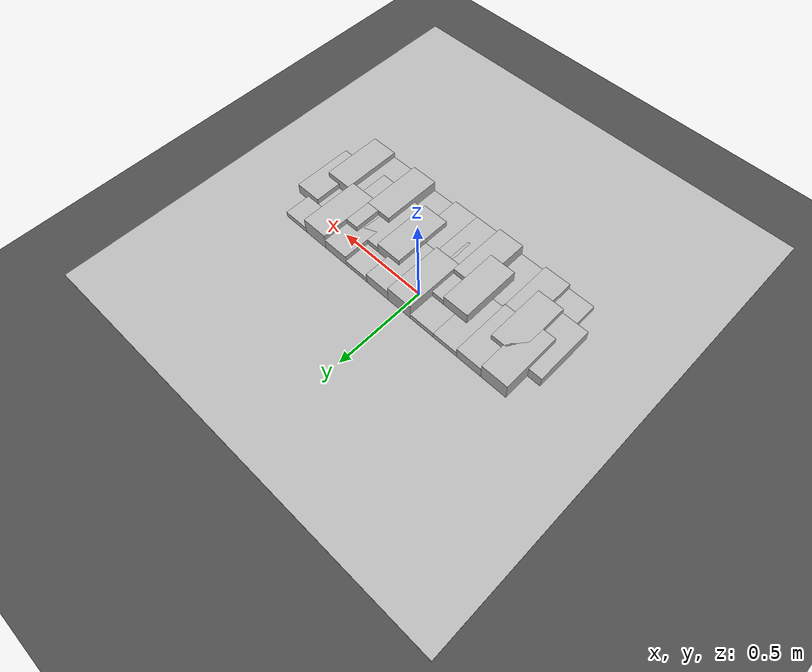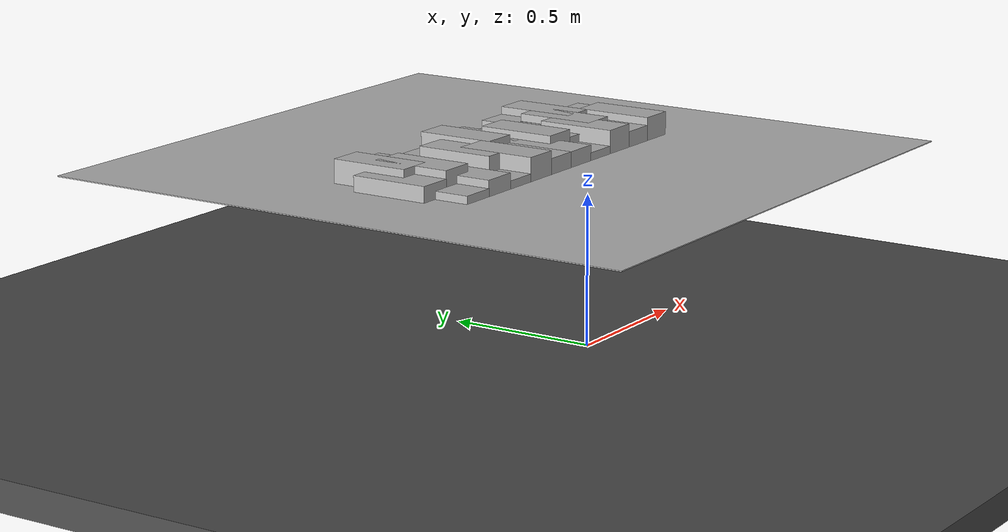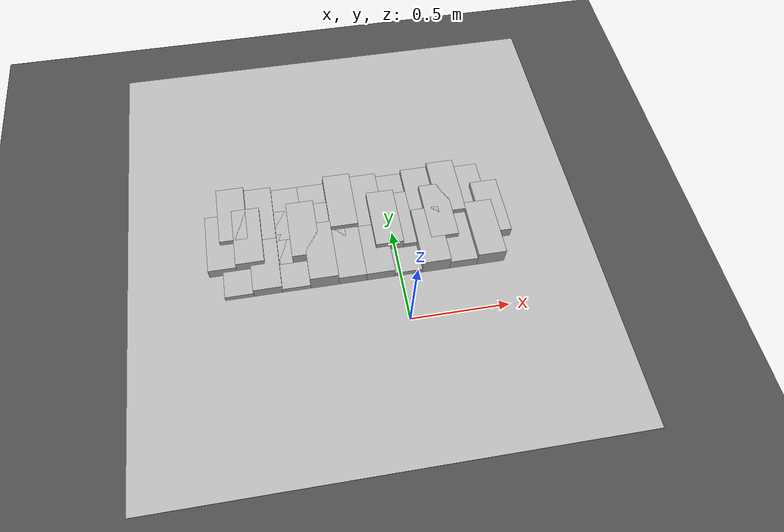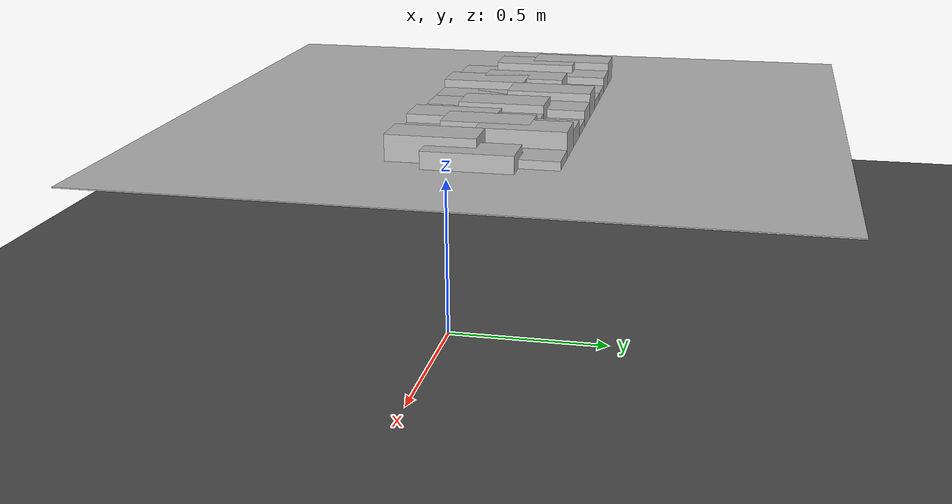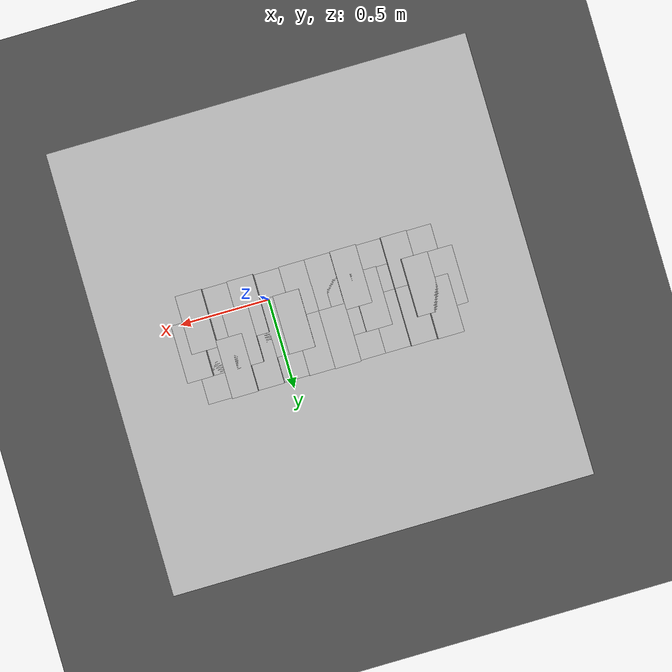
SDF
<sdf version="1.6">
 <world name="default">
  <model name="ground_plane">
   <static>1</static>
   <link name="link">
    <collision name="collision">
     <geometry><plane><normal>0 0 1</normal><size>100 100</size></plane></geometry>
     <surface><friction><ode><mu>100</mu><mu2>50</mu2></ode></friction></surface>
    </collision>
    <visual name="visual">
     <cast_shadows>0</cast_shadows>
     <geometry><plane><normal>0 0 1</normal><size>100 100</size></plane></geometry>
     <material>
      <script><uri>file://media/materials/scripts/gazebo.material</uri><name>Gazebo/Grey</name></script>
     </material>
    </visual>
   </link>
  </model>
  <model name="frc2016_roughterrain_0">
   <link name="link_clone">
    <pose>-0.141369 0.126623 -0.073164 0 -0 0</pose>
    <inertial>
     <inertia><ixx>nan</ixx><ixy>0</ixy><ixz>0</ixz><iyy>nan</iyy><iyz>0</iyz><izz>nan</izz></inertia>
     <mass>0</mass>
    </inertial>
    <visual name="row1_block3_md">
     <pose>0.28575 0.1143 0.10968 0 -0 0</pose>
     <geometry><box><size>0.115452 0.257474 0.0508</size></box></geometry>
     <material><shader type="pixel"/></material>
    </visual>
    <visual name="row1_block5_md">
     <pose>0.05715 0.1143 0.10968 0 -0 0</pose>
     <geometry><box><size>0.115452 0.257474 0.0508</size></box></geometry>
     <material><shader type="pixel"/></material>
    </visual>
    <visual name="row1_block8_sm">
     <pose>-0.28575 0.1143 0.09698 0 -0 0</pose>
     <geometry><box><size>0.115452 0.257474 0.0254</size></box></geometry>
     <material><shader type="pixel"/></material>
    </visual>
    <visual name="row1_block6_lg">
     <pose>-0.05715 0.1143 0.12238 0 -0 0</pose>
     <geometry><box><size>0.115452 0.257474 0.0762</size></box></geometry>
     <material><shader type="pixel"/></material>
    </visual>
    <visual name="row1_block7_sm">
     <pose>-0.17145 0.1143 0.09698 0 -0 0</pose>
     <geometry><box><size>0.115452 0.257474 0.0254</size></box></geometry>
     <material><shader type="pixel"/></material>
    </visual>
    <visual name="row1_block4_sm">
     <pose>0.17145 0.1143 0.09698 0 -0 0</pose>
     <geometry><box><size>0.115452 0.257474 0.0254</size></box></geometry>
     <material><shader type="pixel"/></material>
    </visual>
    <visual name="row1_block2_lg">
     <pose>0.40005 0.1143 0.12238 0 -0 0</pose>
     <geometry><box><size>0.115452 0.257474 0.0762</size></box></geometry>
     <material><shader type="pixel"/></material>
    </visual>
    <visual name="platform">
     <pose>0 0 0.08269 0 -0 0</pose>
     <geometry><box><size>1.91826 2.01688 0.003175</size></box></geometry>
     <material><shader type="pixel"/></material>
    </visual>
    <visual name="row1_block1_sm">
     <pose>0.51435 0.1143 0.09698 0 -0 0</pose>
     <geometry><box><size>0.115452 0.257474 0.0254</size></box></geometry>
     <material><shader type="pixel"/></material>
    </visual>
    <visual name="row1_block9_md">
     <pose>-0.40005 0.1143 0.10968 0 -0 0</pose>
     <geometry><box><size>0.115452 0.257474 0.0508</size></box></geometry>
     <material><shader type="pixel"/></material>
    </visual>
    <visual name="row2_block1_md">
     <pose>0.5715 0 0.10968 0 -0 0</pose>
     <geometry><box><size>0.115452 0.257474 0.0508</size></box></geometry>
     <material><shader type="pixel"/></material>
    </visual>
    <visual name="row1_block10_lg">
     <pose>-0.51435 0.1143 0.12238 0 -0 0</pose>
     <geometry><box><size>0.115452 0.257474 0.0762</size></box></geometry>
     <material><shader type="pixel"/></material>
    </visual>
    <visual name="row2_block2_sm">
     <pose>0.4572 0 0.09698 0 -0 0</pose>
     <geometry><box><size>0.115452 0.257474 0.0254</size></box></geometry>
     <material><shader type="pixel"/></material>
    </visual>
    <visual name="row2_block3_lg">
     <pose>0.3429 0 0.12238 0 -0 0</pose>
     <geometry><box><size>0.115452 0.257474 0.0762</size></box></geometry>
     <material><shader type="pixel"/></material>
    </visual>
    <visual name="row2_block4_md">
     <pose>0.2286 0 0.10968 0 -0 0</pose>
     <geometry><box><size>0.115452 0.257474 0.0508</size></box></geometry>
     <material><shader type="pixel"/></material>
    </visual>
    <visual name="row2_block5_lg">
     <pose>0.1143 0 0.12238 0 -0 0</pose>
     <geometry><box><size>0.115452 0.257474 0.0762</size></box></geometry>
     <material><shader type="pixel"/></material>
    </visual>
    <visual name="row2_block6_sm">
     <pose>0 0 0.09698 0 -0 0</pose>
     <geometry><box><size>0.115452 0.257474 0.0254</size></box></geometry>
     <material><shader type="pixel"/></material>
    </visual>
    <visual name="row2_block7_md">
     <pose>-0.1143 0 0.10968 0 -0 0</pose>
     <geometry><box><size>0.115452 0.257474 0.0508</size></box></geometry>
     <material><shader type="pixel"/></material>
    </visual>
    <visual name="row2_block8_lg">
     <pose>-0.2286 0 0.12238 0 -0 0</pose>
     <geometry><box><size>0.115452 0.257474 0.0762</size></box></geometry>
     <material><shader type="pixel"/></material>
    </visual>
    <visual name="row2_block9_sm">
     <pose>-0.3429 0 0.09698 0 -0 0</pose>
     <geometry><box><size>0.115452 0.257474 0.0254</size></box></geometry>
     <material><shader type="pixel"/></material>
    </visual>
    <visual name="row2_block10_lg">
     <pose>-0.4572 0 0.12238 0 -0 0</pose>
     <geometry><box><size>0.115452 0.257474 0.0762</size></box></geometry>
     <material><shader type="pixel"/></material>
    </visual>
    <visual name="row2_block11_md">
     <pose>-0.5715 0 0.10968 0 -0 0</pose>
     <geometry><box><size>0.115452 0.257474 0.0508</size></box></geometry>
     <material><shader type="pixel"/></material>
    </visual>
    <visual name="row3_block2_md">
     <pose>0.40005 -0.1143 0.10968 0 -0 0</pose>
     <geometry><box><size>0.115452 0.257474 0.0508</size></box></geometry>
     <material><shader type="pixel"/></material>
    </visual>
    <visual name="row3_block1_lg">
     <pose>0.51435 -0.1143 0.12238 0 -0 0</pose>
     <geometry><box><size>0.115452 0.257474 0.0762</size></box></geometry>
     <material><shader type="pixel"/></material>
    </visual>
    <visual name="row3_block3_lg">
     <pose>0.28575 -0.1143 0.12238 0 -0 0</pose>
     <geometry><box><size>0.115452 0.257474 0.0762</size></box></geometry>
     <material><shader type="pixel"/></material>
    </visual>
    <visual name="row3_block4_sm">
     <pose>0.17145 -0.1143 0.09698 0 -0 0</pose>
     <geometry><box><size>0.115452 0.257474 0.0254</size></box></geometry>
     <material><shader type="pixel"/></material>
    </visual>
    <visual name="row3_block5_md">
     <pose>0.05715 -0.1143 0.10968 0 -0 0</pose>
     <geometry><box><size>0.115452 0.257474 0.0508</size></box></geometry>
     <material><shader type="pixel"/></material>
    </visual>
    <visual name="row3_block6_md">
     <pose>-0.05715 -0.1143 0.10968 0 -0 0</pose>
     <geometry><box><size>0.115452 0.257474 0.0508</size></box></geometry>
     <material><shader type="pixel"/></material>
    </visual>
    <visual name="row3_block8_sm">
     <pose>-0.28575 -0.1143 0.09698 0 -0 0</pose>
     <geometry><box><size>0.115452 0.257474 0.0254</size></box></geometry>
     <material><shader type="pixel"/></material>
    </visual>
    <visual name="row3_block7_lg">
     <pose>-0.17145 -0.1143 0.12238 0 -0 0</pose>
     <geometry><box><size>0.115452 0.257474 0.0762</size></box></geometry>
     <material><shader type="pixel"/></material>
    </visual>
    <visual name="row3_block9_md">
     <pose>-0.40005 -0.1143 0.10968 0 -0 0</pose>
     <geometry><box><size>0.115452 0.257474 0.0508</size></box></geometry>
     <material><shader type="pixel"/></material>
    </visual>
    <visual name="row3_block10_sm">
     <pose>-0.51435 -0.1143 0.09698 0 -0 0</pose>
     <geometry><box><size>0.115452 0.257474 0.0254</size></box></geometry>
     <material><shader type="pixel"/></material>
    </visual>
    <collision name="row2_block5_lg_0">
     <pose>0.1143 0 0.12238 0 -0 0</pose>
     <geometry><box><size>0.115452 0.257474 0.0762</size></box></geometry>
     <surface>
      <friction>
       <ode><mu>1</mu><mu2>1</mu2><fdir1>0 0 0</fdir1><slip1>0</slip1><slip2>0</slip2></ode>
       <torsional>
        <coefficient>1</coefficient>
        <patch_radius>0</patch_radius>
        <surface_radius>0</surface_radius>
        <use_patch_radius>1</use_patch_radius>
        <ode><slip>0</slip></ode>
       </torsional>
      </friction>
      <bounce><restitution_coefficient>0</restitution_coefficient><threshold>1e+06</threshold></bounce>
      <contact>
       <collide_without_contact>0</collide_without_contact>
       <collide_without_contact_bitmask>1</collide_without_contact_bitmask>
       <collide_bitmask>1</collide_bitmask>
       <ode>
        <soft_cfm>0</soft_cfm>
        <soft_erp>0.2</soft_erp>
        <kp>1e+13</kp>
        <kd>1</kd>
        <max_vel>0.01</max_vel>
        <min_depth>0</min_depth>
       </ode>
       <bullet>
        <split_impulse>1</split_impulse>
        <split_impulse_penetration_threshold>-0.01</split_impulse_penetration_threshold>
        <soft_cfm>0</soft_cfm>
        <soft_erp>0.2</soft_erp>
        <kp>1e+13</kp>
        <kd>1</kd>
       </bullet>
      </contact>
     </surface>
    </collision>
    <collision name="platform_0">
     <pose>0 0 0.08269 0 -0 0</pose>
     <geometry><box><size>1.91826 2.01688 0.003175</size></box></geometry>
     <surface>
      <friction>
       <ode><mu>1</mu><mu2>1</mu2><fdir1>0 0 0</fdir1><slip1>0</slip1><slip2>0</slip2></ode>
       <torsional>
        <coefficient>1</coefficient>
        <patch_radius>0</patch_radius>
        <surface_radius>0</surface_radius>
        <use_patch_radius>1</use_patch_radius>
        <ode><slip>0</slip></ode>
       </torsional>
      </friction>
      <bounce><restitution_coefficient>0</restitution_coefficient><threshold>1e+06</threshold></bounce>
      <contact>
       <collide_without_contact>0</collide_without_contact>
       <collide_without_contact_bitmask>1</collide_without_contact_bitmask>
       <collide_bitmask>1</collide_bitmask>
       <ode>
        <soft_cfm>0</soft_cfm>
        <soft_erp>0.2</soft_erp>
        <kp>1e+13</kp>
        <kd>1</kd>
        <max_vel>0.01</max_vel>
        <min_depth>0</min_depth>
       </ode>
       <bullet>
        <split_impulse>1</split_impulse>
        <split_impulse_penetration_threshold>-0.01</split_impulse_penetration_threshold>
        <soft_cfm>0</soft_cfm>
        <soft_erp>0.2</soft_erp>
        <kp>1e+13</kp>
        <kd>1</kd>
       </bullet>
      </contact>
     </surface>
    </collision>
    <collision name="row1_block1_sm_0">
     <pose>0.51435 0.1143 0.09698 0 -0 0</pose>
     <geometry><box><size>0.115452 0.257474 0.0254</size></box></geometry>
     <surface>
      <friction>
       <ode><mu>1</mu><mu2>1</mu2><fdir1>0 0 0</fdir1><slip1>0</slip1><slip2>0</slip2></ode>
       <torsional>
        <coefficient>1</coefficient>
        <patch_radius>0</patch_radius>
        <surface_radius>0</surface_radius>
        <use_patch_radius>1</use_patch_radius>
        <ode><slip>0</slip></ode>
       </torsional>
      </friction>
      <bounce><restitution_coefficient>0</restitution_coefficient><threshold>1e+06</threshold></bounce>
      <contact>
       <collide_without_contact>0</collide_without_contact>
       <collide_without_contact_bitmask>1</collide_without_contact_bitmask>
       <collide_bitmask>1</collide_bitmask>
       <ode>
        <soft_cfm>0</soft_cfm>
        <soft_erp>0.2</soft_erp>
        <kp>1e+13</kp>
        <kd>1</kd>
        <max_vel>0.01</max_vel>
        <min_depth>0</min_depth>
       </ode>
       <bullet>
        <split_impulse>1</split_impulse>
        <split_impulse_penetration_threshold>-0.01</split_impulse_penetration_threshold>
        <soft_cfm>0</soft_cfm>
        <soft_erp>0.2</soft_erp>
        <kp>1e+13</kp>
        <kd>1</kd>
       </bullet>
      </contact>
     </surface>
    </collision>
    <collision name="row1_block3_md_0">
     <pose>0.28575 0.1143 0.10968 0 -0 0</pose>
     <geometry><box><size>0.115452 0.257474 0.0508</size></box></geometry>
     <surface>
      <friction>
       <ode><mu>1</mu><mu2>1</mu2><fdir1>0 0 0</fdir1><slip1>0</slip1><slip2>0</slip2></ode>
       <torsional>
        <coefficient>1</coefficient>
        <patch_radius>0</patch_radius>
        <surface_radius>0</surface_radius>
        <use_patch_radius>1</use_patch_radius>
        <ode><slip>0</slip></ode>
       </torsional>
      </friction>
      <bounce><restitution_coefficient>0</restitution_coefficient><threshold>1e+06</threshold></bounce>
      <contact>
       <collide_without_contact>0</collide_without_contact>
       <collide_without_contact_bitmask>1</collide_without_contact_bitmask>
       <collide_bitmask>1</collide_bitmask>
       <ode>
        <soft_cfm>0</soft_cfm>
        <soft_erp>0.2</soft_erp>
        <kp>1e+13</kp>
        <kd>1</kd>
        <max_vel>0.01</max_vel>
        <min_depth>0</min_depth>
       </ode>
       <bullet>
        <split_impulse>1</split_impulse>
        <split_impulse_penetration_threshold>-0.01</split_impulse_penetration_threshold>
        <soft_cfm>0</soft_cfm>
        <soft_erp>0.2</soft_erp>
        <kp>1e+13</kp>
        <kd>1</kd>
       </bullet>
      </contact>
     </surface>
    </collision>
    <collision name="row1_block2_lg_0">
     <pose>0.40005 0.1143 0.12238 0 -0 0</pose>
     <geometry><box><size>0.115452 0.257474 0.0762</size></box></geometry>
     <surface>
      <friction>
       <ode><mu>1</mu><mu2>1</mu2><fdir1>0 0 0</fdir1><slip1>0</slip1><slip2>0</slip2></ode>
       <torsional>
        <coefficient>1</coefficient>
        <patch_radius>0</patch_radius>
        <surface_radius>0</surface_radius>
        <use_patch_radius>1</use_patch_radius>
        <ode><slip>0</slip></ode>
       </torsional>
      </friction>
      <bounce><restitution_coefficient>0</restitution_coefficient><threshold>1e+06</threshold></bounce>
      <contact>
       <collide_without_contact>0</collide_without_contact>
       <collide_without_contact_bitmask>1</collide_without_contact_bitmask>
       <collide_bitmask>1</collide_bitmask>
       <ode>
        <soft_cfm>0</soft_cfm>
        <soft_erp>0.2</soft_erp>
        <kp>1e+13</kp>
        <kd>1</kd>
        <max_vel>0.01</max_vel>
        <min_depth>0</min_depth>
       </ode>
       <bullet>
        <split_impulse>1</split_impulse>
        <split_impulse_penetration_threshold>-0.01</split_impulse_penetration_threshold>
        <soft_cfm>0</soft_cfm>
        <soft_erp>0.2</soft_erp>
        <kp>1e+13</kp>
        <kd>1</kd>
       </bullet>
      </contact>
     </surface>
    </collision>
    <collision name="row1_block6_lg_0">
     <pose>-0.05715 0.1143 0.12238 0 -0 0</pose>
     <geometry><box><size>0.115452 0.257474 0.0762</size></box></geometry>
     <surface>
      <friction>
       <ode><mu>1</mu><mu2>1</mu2><fdir1>0 0 0</fdir1><slip1>0</slip1><slip2>0</slip2></ode>
       <torsional>
        <coefficient>1</coefficient>
        <patch_radius>0</patch_radius>
        <surface_radius>0</surface_radius>
        <use_patch_radius>1</use_patch_radius>
        <ode><slip>0</slip></ode>
       </torsional>
      </friction>
      <bounce><restitution_coefficient>0</restitution_coefficient><threshold>1e+06</threshold></bounce>
      <contact>
       <collide_without_contact>0</collide_without_contact>
       <collide_without_contact_bitmask>1</collide_without_contact_bitmask>
       <collide_bitmask>1</collide_bitmask>
       <ode>
        <soft_cfm>0</soft_cfm>
        <soft_erp>0.2</soft_erp>
        <kp>1e+13</kp>
        <kd>1</kd>
        <max_vel>0.01</max_vel>
        <min_depth>0</min_depth>
       </ode>
       <bullet>
        <split_impulse>1</split_impulse>
        <split_impulse_penetration_threshold>-0.01</split_impulse_penetration_threshold>
        <soft_cfm>0</soft_cfm>
        <soft_erp>0.2</soft_erp>
        <kp>1e+13</kp>
        <kd>1</kd>
       </bullet>
      </contact>
     </surface>
    </collision>
    <collision name="row1_block5_md_0">
     <pose>0.05715 0.1143 0.10968 0 -0 0</pose>
     <geometry><box><size>0.115452 0.257474 0.0508</size></box></geometry>
     <surface>
      <friction>
       <ode><mu>1</mu><mu2>1</mu2><fdir1>0 0 0</fdir1><slip1>0</slip1><slip2>0</slip2></ode>
       <torsional>
        <coefficient>1</coefficient>
        <patch_radius>0</patch_radius>
        <surface_radius>0</surface_radius>
        <use_patch_radius>1</use_patch_radius>
        <ode><slip>0</slip></ode>
       </torsional>
      </friction>
      <bounce><restitution_coefficient>0</restitution_coefficient><threshold>1e+06</threshold></bounce>
      <contact>
       <collide_without_contact>0</collide_without_contact>
       <collide_without_contact_bitmask>1</collide_without_contact_bitmask>
       <collide_bitmask>1</collide_bitmask>
       <ode>
        <soft_cfm>0</soft_cfm>
        <soft_erp>0.2</soft_erp>
        <kp>1e+13</kp>
        <kd>1</kd>
        <max_vel>0.01</max_vel>
        <min_depth>0</min_depth>
       </ode>
       <bullet>
        <split_impulse>1</split_impulse>
        <split_impulse_penetration_threshold>-0.01</split_impulse_penetration_threshold>
        <soft_cfm>0</soft_cfm>
        <soft_erp>0.2</soft_erp>
        <kp>1e+13</kp>
        <kd>1</kd>
       </bullet>
      </contact>
     </surface>
    </collision>
    <collision name="row1_block4_sm_0">
     <pose>0.17145 0.1143 0.09698 0 -0 0</pose>
     <geometry><box><size>0.115452 0.257474 0.0254</size></box></geometry>
     <surface>
      <friction>
       <ode><mu>1</mu><mu2>1</mu2><fdir1>0 0 0</fdir1><slip1>0</slip1><slip2>0</slip2></ode>
       <torsional>
        <coefficient>1</coefficient>
        <patch_radius>0</patch_radius>
        <surface_radius>0</surface_radius>
        <use_patch_radius>1</use_patch_radius>
        <ode><slip>0</slip></ode>
       </torsional>
      </friction>
      <bounce><restitution_coefficient>0</restitution_coefficient><threshold>1e+06</threshold></bounce>
      <contact>
       <collide_without_contact>0</collide_without_contact>
       <collide_without_contact_bitmask>1</collide_without_contact_bitmask>
       <collide_bitmask>1</collide_bitmask>
       <ode>
        <soft_cfm>0</soft_cfm>
        <soft_erp>0.2</soft_erp>
        <kp>1e+13</kp>
        <kd>1</kd>
        <max_vel>0.01</max_vel>
        <min_depth>0</min_depth>
       </ode>
       <bullet>
        <split_impulse>1</split_impulse>
        <split_impulse_penetration_threshold>-0.01</split_impulse_penetration_threshold>
        <soft_cfm>0</soft_cfm>
        <soft_erp>0.2</soft_erp>
        <kp>1e+13</kp>
        <kd>1</kd>
       </bullet>
      </contact>
     </surface>
    </collision>
    <collision name="row1_block7_sm_0">
     <pose>-0.17145 0.1143 0.09698 0 -0 0</pose>
     <geometry><box><size>0.115452 0.257474 0.0254</size></box></geometry>
     <surface>
      <friction>
       <ode><mu>1</mu><mu2>1</mu2><fdir1>0 0 0</fdir1><slip1>0</slip1><slip2>0</slip2></ode>
       <torsional>
        <coefficient>1</coefficient>
        <patch_radius>0</patch_radius>
        <surface_radius>0</surface_radius>
        <use_patch_radius>1</use_patch_radius>
        <ode><slip>0</slip></ode>
       </torsional>
      </friction>
      <bounce><restitution_coefficient>0</restitution_coefficient><threshold>1e+06</threshold></bounce>
      <contact>
       <collide_without_contact>0</collide_without_contact>
       <collide_without_contact_bitmask>1</collide_without_contact_bitmask>
       <collide_bitmask>1</collide_bitmask>
       <ode>
        <soft_cfm>0</soft_cfm>
        <soft_erp>0.2</soft_erp>
        <kp>1e+13</kp>
        <kd>1</kd>
        <max_vel>0.01</max_vel>
        <min_depth>0</min_depth>
       </ode>
       <bullet>
        <split_impulse>1</split_impulse>
        <split_impulse_penetration_threshold>-0.01</split_impulse_penetration_threshold>
        <soft_cfm>0</soft_cfm>
        <soft_erp>0.2</soft_erp>
        <kp>1e+13</kp>
        <kd>1</kd>
       </bullet>
      </contact>
     </surface>
    </collision>
    <collision name="row1_block8_sm_0">
     <pose>-0.28575 0.1143 0.09698 0 -0 0</pose>
     <geometry><box><size>0.115452 0.257474 0.0254</size></box></geometry>
     <surface>
      <friction>
       <ode><mu>1</mu><mu2>1</mu2><fdir1>0 0 0</fdir1><slip1>0</slip1><slip2>0</slip2></ode>
       <torsional>
        <coefficient>1</coefficient>
        <patch_radius>0</patch_radius>
        <surface_radius>0</surface_radius>
        <use_patch_radius>1</use_patch_radius>
        <ode><slip>0</slip></ode>
       </torsional>
      </friction>
      <bounce><restitution_coefficient>0</restitution_coefficient><threshold>1e+06</threshold></bounce>
      <contact>
       <collide_without_contact>0</collide_without_contact>
       <collide_without_contact_bitmask>1</collide_without_contact_bitmask>
       <collide_bitmask>1</collide_bitmask>
       <ode>
        <soft_cfm>0</soft_cfm>
        <soft_erp>0.2</soft_erp>
        <kp>1e+13</kp>
        <kd>1</kd>
        <max_vel>0.01</max_vel>
        <min_depth>0</min_depth>
       </ode>
       <bullet>
        <split_impulse>1</split_impulse>
        <split_impulse_penetration_threshold>-0.01</split_impulse_penetration_threshold>
        <soft_cfm>0</soft_cfm>
        <soft_erp>0.2</soft_erp>
        <kp>1e+13</kp>
        <kd>1</kd>
       </bullet>
      </contact>
     </surface>
    </collision>
    <collision name="row1_block10_lg_0">
     <pose>-0.51435 0.1143 0.12238 0 -0 0</pose>
     <geometry><box><size>0.115452 0.257474 0.0762</size></box></geometry>
     <surface>
      <friction>
       <ode><mu>1</mu><mu2>1</mu2><fdir1>0 0 0</fdir1><slip1>0</slip1><slip2>0</slip2></ode>
       <torsional>
        <coefficient>1</coefficient>
        <patch_radius>0</patch_radius>
        <surface_radius>0</surface_radius>
        <use_patch_radius>1</use_patch_radius>
        <ode><slip>0</slip></ode>
       </torsional>
      </friction>
      <bounce><restitution_coefficient>0</restitution_coefficient><threshold>1e+06</threshold></bounce>
      <contact>
       <collide_without_contact>0</collide_without_contact>
       <collide_without_contact_bitmask>1</collide_without_contact_bitmask>
       <collide_bitmask>1</collide_bitmask>
       <ode>
        <soft_cfm>0</soft_cfm>
        <soft_erp>0.2</soft_erp>
        <kp>1e+13</kp>
        <kd>1</kd>
        <max_vel>0.01</max_vel>
        <min_depth>0</min_depth>
       </ode>
       <bullet>
        <split_impulse>1</split_impulse>
        <split_impulse_penetration_threshold>-0.01</split_impulse_penetration_threshold>
        <soft_cfm>0</soft_cfm>
        <soft_erp>0.2</soft_erp>
        <kp>1e+13</kp>
        <kd>1</kd>
       </bullet>
      </contact>
     </surface>
    </collision>
    <collision name="row1_block9_md_0">
     <pose>-0.40005 0.1143 0.10968 0 -0 0</pose>
     <geometry><box><size>0.115452 0.257474 0.0508</size></box></geometry>
     <surface>
      <friction>
       <ode><mu>1</mu><mu2>1</mu2><fdir1>0 0 0</fdir1><slip1>0</slip1><slip2>0</slip2></ode>
       <torsional>
        <coefficient>1</coefficient>
        <patch_radius>0</patch_radius>
        <surface_radius>0</surface_radius>
        <use_patch_radius>1</use_patch_radius>
        <ode><slip>0</slip></ode>
       </torsional>
      </friction>
      <bounce><restitution_coefficient>0</restitution_coefficient><threshold>1e+06</threshold></bounce>
      <contact>
       <collide_without_contact>0</collide_without_contact>
       <collide_without_contact_bitmask>1</collide_without_contact_bitmask>
       <collide_bitmask>1</collide_bitmask>
       <ode>
        <soft_cfm>0</soft_cfm>
        <soft_erp>0.2</soft_erp>
        <kp>1e+13</kp>
        <kd>1</kd>
        <max_vel>0.01</max_vel>
        <min_depth>0</min_depth>
       </ode>
       <bullet>
        <split_impulse>1</split_impulse>
        <split_impulse_penetration_threshold>-0.01</split_impulse_penetration_threshold>
        <soft_cfm>0</soft_cfm>
        <soft_erp>0.2</soft_erp>
        <kp>1e+13</kp>
        <kd>1</kd>
       </bullet>
      </contact>
     </surface>
    </collision>
    <collision name="row2_block1_md_0">
     <pose>0.5715 0 0.10968 0 -0 0</pose>
     <geometry><box><size>0.115452 0.257474 0.0508</size></box></geometry>
     <surface>
      <friction>
       <ode><mu>1</mu><mu2>1</mu2><fdir1>0 0 0</fdir1><slip1>0</slip1><slip2>0</slip2></ode>
       <torsional>
        <coefficient>1</coefficient>
        <patch_radius>0</patch_radius>
        <surface_radius>0</surface_radius>
        <use_patch_radius>1</use_patch_radius>
        <ode><slip>0</slip></ode>
       </torsional>
      </friction>
      <bounce><restitution_coefficient>0</restitution_coefficient><threshold>1e+06</threshold></bounce>
      <contact>
       <collide_without_contact>0</collide_without_contact>
       <collide_without_contact_bitmask>1</collide_without_contact_bitmask>
       <collide_bitmask>1</collide_bitmask>
       <ode>
        <soft_cfm>0</soft_cfm>
        <soft_erp>0.2</soft_erp>
        <kp>1e+13</kp>
        <kd>1</kd>
        <max_vel>0.01</max_vel>
        <min_depth>0</min_depth>
       </ode>
       <bullet>
        <split_impulse>1</split_impulse>
        <split_impulse_penetration_threshold>-0.01</split_impulse_penetration_threshold>
        <soft_cfm>0</soft_cfm>
        <soft_erp>0.2</soft_erp>
        <kp>1e+13</kp>
        <kd>1</kd>
       </bullet>
      </contact>
     </surface>
    </collision>
    <collision name="row2_block4_md_0">
     <pose>0.2286 0 0.10968 0 -0 0</pose>
     <geometry><box><size>0.115452 0.257474 0.0508</size></box></geometry>
     <surface>
      <friction>
       <ode><mu>1</mu><mu2>1</mu2><fdir1>0 0 0</fdir1><slip1>0</slip1><slip2>0</slip2></ode>
       <torsional>
        <coefficient>1</coefficient>
        <patch_radius>0</patch_radius>
        <surface_radius>0</surface_radius>
        <use_patch_radius>1</use_patch_radius>
        <ode><slip>0</slip></ode>
       </torsional>
      </friction>
      <bounce><restitution_coefficient>0</restitution_coefficient><threshold>1e+06</threshold></bounce>
      <contact>
       <collide_without_contact>0</collide_without_contact>
       <collide_without_contact_bitmask>1</collide_without_contact_bitmask>
       <collide_bitmask>1</collide_bitmask>
       <ode>
        <soft_cfm>0</soft_cfm>
        <soft_erp>0.2</soft_erp>
        <kp>1e+13</kp>
        <kd>1</kd>
        <max_vel>0.01</max_vel>
        <min_depth>0</min_depth>
       </ode>
       <bullet>
        <split_impulse>1</split_impulse>
        <split_impulse_penetration_threshold>-0.01</split_impulse_penetration_threshold>
        <soft_cfm>0</soft_cfm>
        <soft_erp>0.2</soft_erp>
        <kp>1e+13</kp>
        <kd>1</kd>
       </bullet>
      </contact>
     </surface>
    </collision>
    <collision name="row2_block2_sm_0">
     <pose>0.4572 0 0.09698 0 -0 0</pose>
     <geometry><box><size>0.115452 0.257474 0.0254</size></box></geometry>
     <surface>
      <friction>
       <ode><mu>1</mu><mu2>1</mu2><fdir1>0 0 0</fdir1><slip1>0</slip1><slip2>0</slip2></ode>
       <torsional>
        <coefficient>1</coefficient>
        <patch_radius>0</patch_radius>
        <surface_radius>0</surface_radius>
        <use_patch_radius>1</use_patch_radius>
        <ode><slip>0</slip></ode>
       </torsional>
      </friction>
      <bounce><restitution_coefficient>0</restitution_coefficient><threshold>1e+06</threshold></bounce>
      <contact>
       <collide_without_contact>0</collide_without_contact>
       <collide_without_contact_bitmask>1</collide_without_contact_bitmask>
       <collide_bitmask>1</collide_bitmask>
       <ode>
        <soft_cfm>0</soft_cfm>
        <soft_erp>0.2</soft_erp>
        <kp>1e+13</kp>
        <kd>1</kd>
        <max_vel>0.01</max_vel>
        <min_depth>0</min_depth>
       </ode>
       <bullet>
        <split_impulse>1</split_impulse>
        <split_impulse_penetration_threshold>-0.01</split_impulse_penetration_threshold>
        <soft_cfm>0</soft_cfm>
        <soft_erp>0.2</soft_erp>
        <kp>1e+13</kp>
        <kd>1</kd>
       </bullet>
      </contact>
     </surface>
    </collision>
    <collision name="row2_block3_lg_0">
     <pose>0.3429 0 0.12238 0 -0 0</pose>
     <geometry><box><size>0.115452 0.257474 0.0762</size></box></geometry>
     <surface>
      <friction>
       <ode><mu>1</mu><mu2>1</mu2><fdir1>0 0 0</fdir1><slip1>0</slip1><slip2>0</slip2></ode>
       <torsional>
        <coefficient>1</coefficient>
        <patch_radius>0</patch_radius>
        <surface_radius>0</surface_radius>
        <use_patch_radius>1</use_patch_radius>
        <ode><slip>0</slip></ode>
       </torsional>
      </friction>
      <bounce><restitution_coefficient>0</restitution_coefficient><threshold>1e+06</threshold></bounce>
      <contact>
       <collide_without_contact>0</collide_without_contact>
       <collide_without_contact_bitmask>1</collide_without_contact_bitmask>
       <collide_bitmask>1</collide_bitmask>
       <ode>
        <soft_cfm>0</soft_cfm>
        <soft_erp>0.2</soft_erp>
        <kp>1e+13</kp>
        <kd>1</kd>
        <max_vel>0.01</max_vel>
        <min_depth>0</min_depth>
       </ode>
       <bullet>
        <split_impulse>1</split_impulse>
        <split_impulse_penetration_threshold>-0.01</split_impulse_penetration_threshold>
        <soft_cfm>0</soft_cfm>
        <soft_erp>0.2</soft_erp>
        <kp>1e+13</kp>
        <kd>1</kd>
       </bullet>
      </contact>
     </surface>
    </collision>
    <collision name="row2_block6_sm_0">
     <pose>0 0 0.09698 0 -0 0</pose>
     <geometry><box><size>0.115452 0.257474 0.0254</size></box></geometry>
     <surface>
      <friction>
       <ode><mu>1</mu><mu2>1</mu2><fdir1>0 0 0</fdir1><slip1>0</slip1><slip2>0</slip2></ode>
       <torsional>
        <coefficient>1</coefficient>
        <patch_radius>0</patch_radius>
        <surface_radius>0</surface_radius>
        <use_patch_radius>1</use_patch_radius>
        <ode><slip>0</slip></ode>
       </torsional>
      </friction>
      <bounce><restitution_coefficient>0</restitution_coefficient><threshold>1e+06</threshold></bounce>
      <contact>
       <collide_without_contact>0</collide_without_contact>
       <collide_without_contact_bitmask>1</collide_without_contact_bitmask>
       <collide_bitmask>1</collide_bitmask>
       <ode>
        <soft_cfm>0</soft_cfm>
        <soft_erp>0.2</soft_erp>
        <kp>1e+13</kp>
        <kd>1</kd>
        <max_vel>0.01</max_vel>
        <min_depth>0</min_depth>
       </ode>
       <bullet>
        <split_impulse>1</split_impulse>
        <split_impulse_penetration_threshold>-0.01</split_impulse_penetration_threshold>
        <soft_cfm>0</soft_cfm>
        <soft_erp>0.2</soft_erp>
        <kp>1e+13</kp>
        <kd>1</kd>
       </bullet>
      </contact>
     </surface>
    </collision>
    <collision name="row2_block8_lg_0">
     <pose>-0.2286 0 0.12238 0 -0 0</pose>
     <geometry><box><size>0.115452 0.257474 0.0762</size></box></geometry>
     <surface>
      <friction>
       <ode><mu>1</mu><mu2>1</mu2><fdir1>0 0 0</fdir1><slip1>0</slip1><slip2>0</slip2></ode>
       <torsional>
        <coefficient>1</coefficient>
        <patch_radius>0</patch_radius>
        <surface_radius>0</surface_radius>
        <use_patch_radius>1</use_patch_radius>
        <ode><slip>0</slip></ode>
       </torsional>
      </friction>
      <bounce><restitution_coefficient>0</restitution_coefficient><threshold>1e+06</threshold></bounce>
      <contact>
       <collide_without_contact>0</collide_without_contact>
       <collide_without_contact_bitmask>1</collide_without_contact_bitmask>
       <collide_bitmask>1</collide_bitmask>
       <ode>
        <soft_cfm>0</soft_cfm>
        <soft_erp>0.2</soft_erp>
        <kp>1e+13</kp>
        <kd>1</kd>
        <max_vel>0.01</max_vel>
        <min_depth>0</min_depth>
       </ode>
       <bullet>
        <split_impulse>1</split_impulse>
        <split_impulse_penetration_threshold>-0.01</split_impulse_penetration_threshold>
        <soft_cfm>0</soft_cfm>
        <soft_erp>0.2</soft_erp>
        <kp>1e+13</kp>
        <kd>1</kd>
       </bullet>
      </contact>
     </surface>
    </collision>
    <collision name="row2_block7_md_0">
     <pose>-0.1143 0 0.10968 0 -0 0</pose>
     <geometry><box><size>0.115452 0.257474 0.0508</size></box></geometry>
     <surface>
      <friction>
       <ode><mu>1</mu><mu2>1</mu2><fdir1>0 0 0</fdir1><slip1>0</slip1><slip2>0</slip2></ode>
       <torsional>
        <coefficient>1</coefficient>
        <patch_radius>0</patch_radius>
        <surface_radius>0</surface_radius>
        <use_patch_radius>1</use_patch_radius>
        <ode><slip>0</slip></ode>
       </torsional>
      </friction>
      <bounce><restitution_coefficient>0</restitution_coefficient><threshold>1e+06</threshold></bounce>
      <contact>
       <collide_without_contact>0</collide_without_contact>
       <collide_without_contact_bitmask>1</collide_without_contact_bitmask>
       <collide_bitmask>1</collide_bitmask>
       <ode>
        <soft_cfm>0</soft_cfm>
        <soft_erp>0.2</soft_erp>
        <kp>1e+13</kp>
        <kd>1</kd>
        <max_vel>0.01</max_vel>
        <min_depth>0</min_depth>
       </ode>
       <bullet>
        <split_impulse>1</split_impulse>
        <split_impulse_penetration_threshold>-0.01</split_impulse_penetration_threshold>
        <soft_cfm>0</soft_cfm>
        <soft_erp>0.2</soft_erp>
        <kp>1e+13</kp>
        <kd>1</kd>
       </bullet>
      </contact>
     </surface>
    </collision>
    <collision name="row2_block10_lg_0">
     <pose>-0.4572 0 0.12238 0 -0 0</pose>
     <geometry><box><size>0.115452 0.257474 0.0762</size></box></geometry>
     <surface>
      <friction>
       <ode><mu>1</mu><mu2>1</mu2><fdir1>0 0 0</fdir1><slip1>0</slip1><slip2>0</slip2></ode>
       <torsional>
        <coefficient>1</coefficient>
        <patch_radius>0</patch_radius>
        <surface_radius>0</surface_radius>
        <use_patch_radius>1</use_patch_radius>
        <ode><slip>0</slip></ode>
       </torsional>
      </friction>
      <bounce><restitution_coefficient>0</restitution_coefficient><threshold>1e+06</threshold></bounce>
      <contact>
       <collide_without_contact>0</collide_without_contact>
       <collide_without_contact_bitmask>1</collide_without_contact_bitmask>
       <collide_bitmask>1</collide_bitmask>
       <ode>
        <soft_cfm>0</soft_cfm>
        <soft_erp>0.2</soft_erp>
        <kp>1e+13</kp>
        <kd>1</kd>
        <max_vel>0.01</max_vel>
        <min_depth>0</min_depth>
       </ode>
       <bullet>
        <split_impulse>1</split_impulse>
        <split_impulse_penetration_threshold>-0.01</split_impulse_penetration_threshold>
        <soft_cfm>0</soft_cfm>
        <soft_erp>0.2</soft_erp>
        <kp>1e+13</kp>
        <kd>1</kd>
       </bullet>
      </contact>
     </surface>
    </collision>
    <collision name="row2_block9_sm_0">
     <pose>-0.3429 0 0.09698 0 -0 0</pose>
     <geometry><box><size>0.115452 0.257474 0.0254</size></box></geometry>
     <surface>
      <friction>
       <ode><mu>1</mu><mu2>1</mu2><fdir1>0 0 0</fdir1><slip1>0</slip1><slip2>0</slip2></ode>
       <torsional>
        <coefficient>1</coefficient>
        <patch_radius>0</patch_radius>
        <surface_radius>0</surface_radius>
        <use_patch_radius>1</use_patch_radius>
        <ode><slip>0</slip></ode>
       </torsional>
      </friction>
      <bounce><restitution_coefficient>0</restitution_coefficient><threshold>1e+06</threshold></bounce>
      <contact>
       <collide_without_contact>0</collide_without_contact>
       <collide_without_contact_bitmask>1</collide_without_contact_bitmask>
       <collide_bitmask>1</collide_bitmask>
       <ode>
        <soft_cfm>0</soft_cfm>
        <soft_erp>0.2</soft_erp>
        <kp>1e+13</kp>
        <kd>1</kd>
        <max_vel>0.01</max_vel>
        <min_depth>0</min_depth>
       </ode>
       <bullet>
        <split_impulse>1</split_impulse>
        <split_impulse_penetration_threshold>-0.01</split_impulse_penetration_threshold>
        <soft_cfm>0</soft_cfm>
        <soft_erp>0.2</soft_erp>
        <kp>1e+13</kp>
        <kd>1</kd>
       </bullet>
      </contact>
     </surface>
    </collision>
    <collision name="row2_block11_md_0">
     <pose>-0.5715 0 0.10968 0 -0 0</pose>
     <geometry><box><size>0.115452 0.257474 0.0508</size></box></geometry>
     <surface>
      <friction>
       <ode><mu>1</mu><mu2>1</mu2><fdir1>0 0 0</fdir1><slip1>0</slip1><slip2>0</slip2></ode>
       <torsional>
        <coefficient>1</coefficient>
        <patch_radius>0</patch_radius>
        <surface_radius>0</surface_radius>
        <use_patch_radius>1</use_patch_radius>
        <ode><slip>0</slip></ode>
       </torsional>
      </friction>
      <bounce><restitution_coefficient>0</restitution_coefficient><threshold>1e+06</threshold></bounce>
      <contact>
       <collide_without_contact>0</collide_without_contact>
       <collide_without_contact_bitmask>1</collide_without_contact_bitmask>
       <collide_bitmask>1</collide_bitmask>
       <ode>
        <soft_cfm>0</soft_cfm>
        <soft_erp>0.2</soft_erp>
        <kp>1e+13</kp>
        <kd>1</kd>
        <max_vel>0.01</max_vel>
        <min_depth>0</min_depth>
       </ode>
       <bullet>
        <split_impulse>1</split_impulse>
        <split_impulse_penetration_threshold>-0.01</split_impulse_penetration_threshold>
        <soft_cfm>0</soft_cfm>
        <soft_erp>0.2</soft_erp>
        <kp>1e+13</kp>
        <kd>1</kd>
       </bullet>
      </contact>
     </surface>
    </collision>
    <collision name="row3_block2_md_0">
     <pose>0.40005 -0.1143 0.10968 0 -0 0</pose>
     <geometry><box><size>0.115452 0.257474 0.0508</size></box></geometry>
     <surface>
      <friction>
       <ode><mu>1</mu><mu2>1</mu2><fdir1>0 0 0</fdir1><slip1>0</slip1><slip2>0</slip2></ode>
       <torsional>
        <coefficient>1</coefficient>
        <patch_radius>0</patch_radius>
        <surface_radius>0</surface_radius>
        <use_patch_radius>1</use_patch_radius>
        <ode><slip>0</slip></ode>
       </torsional>
      </friction>
      <bounce><restitution_coefficient>0</restitution_coefficient><threshold>1e+06</threshold></bounce>
      <contact>
       <collide_without_contact>0</collide_without_contact>
       <collide_without_contact_bitmask>1</collide_without_contact_bitmask>
       <collide_bitmask>1</collide_bitmask>
       <ode>
        <soft_cfm>0</soft_cfm>
        <soft_erp>0.2</soft_erp>
        <kp>1e+13</kp>
        <kd>1</kd>
        <max_vel>0.01</max_vel>
        <min_depth>0</min_depth>
       </ode>
       <bullet>
        <split_impulse>1</split_impulse>
        <split_impulse_penetration_threshold>-0.01</split_impulse_penetration_threshold>
        <soft_cfm>0</soft_cfm>
        <soft_erp>0.2</soft_erp>
        <kp>1e+13</kp>
        <kd>1</kd>
       </bullet>
      </contact>
     </surface>
    </collision>
    <collision name="row3_block5_md_0">
     <pose>0.05715 -0.1143 0.10968 0 -0 0</pose>
     <geometry><box><size>0.115452 0.257474 0.0508</size></box></geometry>
     <surface>
      <friction>
       <ode><mu>1</mu><mu2>1</mu2><fdir1>0 0 0</fdir1><slip1>0</slip1><slip2>0</slip2></ode>
       <torsional>
        <coefficient>1</coefficient>
        <patch_radius>0</patch_radius>
        <surface_radius>0</surface_radius>
        <use_patch_radius>1</use_patch_radius>
        <ode><slip>0</slip></ode>
       </torsional>
      </friction>
      <bounce><restitution_coefficient>0</restitution_coefficient><threshold>1e+06</threshold></bounce>
      <contact>
       <collide_without_contact>0</collide_without_contact>
       <collide_without_contact_bitmask>1</collide_without_contact_bitmask>
       <collide_bitmask>1</collide_bitmask>
       <ode>
        <soft_cfm>0</soft_cfm>
        <soft_erp>0.2</soft_erp>
        <kp>1e+13</kp>
        <kd>1</kd>
        <max_vel>0.01</max_vel>
        <min_depth>0</min_depth>
       </ode>
       <bullet>
        <split_impulse>1</split_impulse>
        <split_impulse_penetration_threshold>-0.01</split_impulse_penetration_threshold>
        <soft_cfm>0</soft_cfm>
        <soft_erp>0.2</soft_erp>
        <kp>1e+13</kp>
        <kd>1</kd>
       </bullet>
      </contact>
     </surface>
    </collision>
    <collision name="row3_block1_lg_0">
     <pose>0.51435 -0.1143 0.12238 0 -0 0</pose>
     <geometry><box><size>0.115452 0.257474 0.0762</size></box></geometry>
     <surface>
      <friction>
       <ode><mu>1</mu><mu2>1</mu2><fdir1>0 0 0</fdir1><slip1>0</slip1><slip2>0</slip2></ode>
       <torsional>
        <coefficient>1</coefficient>
        <patch_radius>0</patch_radius>
        <surface_radius>0</surface_radius>
        <use_patch_radius>1</use_patch_radius>
        <ode><slip>0</slip></ode>
       </torsional>
      </friction>
      <bounce><restitution_coefficient>0</restitution_coefficient><threshold>1e+06</threshold></bounce>
      <contact>
       <collide_without_contact>0</collide_without_contact>
       <collide_without_contact_bitmask>1</collide_without_contact_bitmask>
       <collide_bitmask>1</collide_bitmask>
       <ode>
        <soft_cfm>0</soft_cfm>
        <soft_erp>0.2</soft_erp>
        <kp>1e+13</kp>
        <kd>1</kd>
        <max_vel>0.01</max_vel>
        <min_depth>0</min_depth>
       </ode>
       <bullet>
        <split_impulse>1</split_impulse>
        <split_impulse_penetration_threshold>-0.01</split_impulse_penetration_threshold>
        <soft_cfm>0</soft_cfm>
        <soft_erp>0.2</soft_erp>
        <kp>1e+13</kp>
        <kd>1</kd>
       </bullet>
      </contact>
     </surface>
    </collision>
    <collision name="row3_block3_lg_0">
     <pose>0.28575 -0.1143 0.12238 0 -0 0</pose>
     <geometry><box><size>0.115452 0.257474 0.0762</size></box></geometry>
     <surface>
      <friction>
       <ode><mu>1</mu><mu2>1</mu2><fdir1>0 0 0</fdir1><slip1>0</slip1><slip2>0</slip2></ode>
       <torsional>
        <coefficient>1</coefficient>
        <patch_radius>0</patch_radius>
        <surface_radius>0</surface_radius>
        <use_patch_radius>1</use_patch_radius>
        <ode><slip>0</slip></ode>
       </torsional>
      </friction>
      <bounce><restitution_coefficient>0</restitution_coefficient><threshold>1e+06</threshold></bounce>
      <contact>
       <collide_without_contact>0</collide_without_contact>
       <collide_without_contact_bitmask>1</collide_without_contact_bitmask>
       <collide_bitmask>1</collide_bitmask>
       <ode>
        <soft_cfm>0</soft_cfm>
        <soft_erp>0.2</soft_erp>
        <kp>1e+13</kp>
        <kd>1</kd>
        <max_vel>0.01</max_vel>
        <min_depth>0</min_depth>
       </ode>
       <bullet>
        <split_impulse>1</split_impulse>
        <split_impulse_penetration_threshold>-0.01</split_impulse_penetration_threshold>
        <soft_cfm>0</soft_cfm>
        <soft_erp>0.2</soft_erp>
        <kp>1e+13</kp>
        <kd>1</kd>
       </bullet>
      </contact>
     </surface>
    </collision>
    <collision name="row3_block4_sm_0">
     <pose>0.17145 -0.1143 0.09698 0 -0 0</pose>
     <geometry><box><size>0.115452 0.257474 0.0254</size></box></geometry>
     <surface>
      <friction>
       <ode><mu>1</mu><mu2>1</mu2><fdir1>0 0 0</fdir1><slip1>0</slip1><slip2>0</slip2></ode>
       <torsional>
        <coefficient>1</coefficient>
        <patch_radius>0</patch_radius>
        <surface_radius>0</surface_radius>
        <use_patch_radius>1</use_patch_radius>
        <ode><slip>0</slip></ode>
       </torsional>
      </friction>
      <bounce><restitution_coefficient>0</restitution_coefficient><threshold>1e+06</threshold></bounce>
      <contact>
       <collide_without_contact>0</collide_without_contact>
       <collide_without_contact_bitmask>1</collide_without_contact_bitmask>
       <collide_bitmask>1</collide_bitmask>
       <ode>
        <soft_cfm>0</soft_cfm>
        <soft_erp>0.2</soft_erp>
        <kp>1e+13</kp>
        <kd>1</kd>
        <max_vel>0.01</max_vel>
        <min_depth>0</min_depth>
       </ode>
       <bullet>
        <split_impulse>1</split_impulse>
        <split_impulse_penetration_threshold>-0.01</split_impulse_penetration_threshold>
        <soft_cfm>0</soft_cfm>
        <soft_erp>0.2</soft_erp>
        <kp>1e+13</kp>
        <kd>1</kd>
       </bullet>
      </contact>
     </surface>
    </collision>
    <collision name="row3_block7_lg_0">
     <pose>-0.17145 -0.1143 0.12238 0 -0 0</pose>
     <geometry><box><size>0.115452 0.257474 0.0762</size></box></geometry>
     <surface>
      <friction>
       <ode><mu>1</mu><mu2>1</mu2><fdir1>0 0 0</fdir1><slip1>0</slip1><slip2>0</slip2></ode>
       <torsional>
        <coefficient>1</coefficient>
        <patch_radius>0</patch_radius>
        <surface_radius>0</surface_radius>
        <use_patch_radius>1</use_patch_radius>
        <ode><slip>0</slip></ode>
       </torsional>
      </friction>
      <bounce><restitution_coefficient>0</restitution_coefficient><threshold>1e+06</threshold></bounce>
      <contact>
       <collide_without_contact>0</collide_without_contact>
       <collide_without_contact_bitmask>1</collide_without_contact_bitmask>
       <collide_bitmask>1</collide_bitmask>
       <ode>
        <soft_cfm>0</soft_cfm>
        <soft_erp>0.2</soft_erp>
        <kp>1e+13</kp>
        <kd>1</kd>
        <max_vel>0.01</max_vel>
        <min_depth>0</min_depth>
       </ode>
       <bullet>
        <split_impulse>1</split_impulse>
        <split_impulse_penetration_threshold>-0.01</split_impulse_penetration_threshold>
        <soft_cfm>0</soft_cfm>
        <soft_erp>0.2</soft_erp>
        <kp>1e+13</kp>
        <kd>1</kd>
       </bullet>
      </contact>
     </surface>
    </collision>
    <collision name="row3_block6_md_0">
     <pose>-0.05715 -0.1143 0.10968 0 -0 0</pose>
     <geometry><box><size>0.115452 0.257474 0.0508</size></box></geometry>
     <surface>
      <friction>
       <ode><mu>1</mu><mu2>1</mu2><fdir1>0 0 0</fdir1><slip1>0</slip1><slip2>0</slip2></ode>
       <torsional>
        <coefficient>1</coefficient>
        <patch_radius>0</patch_radius>
        <surface_radius>0</surface_radius>
        <use_patch_radius>1</use_patch_radius>
        <ode><slip>0</slip></ode>
       </torsional>
      </friction>
      <bounce><restitution_coefficient>0</restitution_coefficient><threshold>1e+06</threshold></bounce>
      <contact>
       <collide_without_contact>0</collide_without_contact>
       <collide_without_contact_bitmask>1</collide_without_contact_bitmask>
       <collide_bitmask>1</collide_bitmask>
       <ode>
        <soft_cfm>0</soft_cfm>
        <soft_erp>0.2</soft_erp>
        <kp>1e+13</kp>
        <kd>1</kd>
        <max_vel>0.01</max_vel>
        <min_depth>0</min_depth>
       </ode>
       <bullet>
        <split_impulse>1</split_impulse>
        <split_impulse_penetration_threshold>-0.01</split_impulse_penetration_threshold>
        <soft_cfm>0</soft_cfm>
        <soft_erp>0.2</soft_erp>
        <kp>1e+13</kp>
        <kd>1</kd>
       </bullet>
      </contact>
     </surface>
    </collision>
    <collision name="row3_block8_sm_0">
     <pose>-0.28575 -0.1143 0.09698 0 -0 0</pose>
     <geometry><box><size>0.115452 0.257474 0.0254</size></box></geometry>
     <surface>
      <friction>
       <ode><mu>1</mu><mu2>1</mu2><fdir1>0 0 0</fdir1><slip1>0</slip1><slip2>0</slip2></ode>
       <torsional>
        <coefficient>1</coefficient>
        <patch_radius>0</patch_radius>
        <surface_radius>0</surface_radius>
        <use_patch_radius>1</use_patch_radius>
        <ode><slip>0</slip></ode>
       </torsional>
      </friction>
      <bounce><restitution_coefficient>0</restitution_coefficient><threshold>1e+06</threshold></bounce>
      <contact>
       <collide_without_contact>0</collide_without_contact>
       <collide_without_contact_bitmask>1</collide_without_contact_bitmask>
       <collide_bitmask>1</collide_bitmask>
       <ode>
        <soft_cfm>0</soft_cfm>
        <soft_erp>0.2</soft_erp>
        <kp>1e+13</kp>
        <kd>1</kd>
        <max_vel>0.01</max_vel>
        <min_depth>0</min_depth>
       </ode>
       <bullet>
        <split_impulse>1</split_impulse>
        <split_impulse_penetration_threshold>-0.01</split_impulse_penetration_threshold>
        <soft_cfm>0</soft_cfm>
        <soft_erp>0.2</soft_erp>
        <kp>1e+13</kp>
        <kd>1</kd>
       </bullet>
      </contact>
     </surface>
    </collision>
    <collision name="row3_block10_sm_0">
     <pose>-0.51435 -0.1143 0.09698 0 -0 0</pose>
     <geometry><box><size>0.115452 0.257474 0.0254</size></box></geometry>
     <surface>
      <friction>
       <ode><mu>1</mu><mu2>1</mu2><fdir1>0 0 0</fdir1><slip1>0</slip1><slip2>0</slip2></ode>
       <torsional>
        <coefficient>1</coefficient>
        <patch_radius>0</patch_radius>
        <surface_radius>0</surface_radius>
        <use_patch_radius>1</use_patch_radius>
        <ode><slip>0</slip></ode>
       </torsional>
      </friction>
      <bounce><restitution_coefficient>0</restitution_coefficient><threshold>1e+06</threshold></bounce>
      <contact>
       <collide_without_contact>0</collide_without_contact>
       <collide_without_contact_bitmask>1</collide_without_contact_bitmask>
       <collide_bitmask>1</collide_bitmask>
       <ode>
        <soft_cfm>0</soft_cfm>
        <soft_erp>0.2</soft_erp>
        <kp>1e+13</kp>
        <kd>1</kd>
        <max_vel>0.01</max_vel>
        <min_depth>0</min_depth>
       </ode>
       <bullet>
        <split_impulse>1</split_impulse>
        <split_impulse_penetration_threshold>-0.01</split_impulse_penetration_threshold>
        <soft_cfm>0</soft_cfm>
        <soft_erp>0.2</soft_erp>
        <kp>1e+13</kp>
        <kd>1</kd>
       </bullet>
      </contact>
     </surface>
    </collision>
    <collision name="row3_block9_md_0">
     <pose>-0.40005 -0.1143 0.10968 0 -0 0</pose>
     <geometry><box><size>0.115452 0.257474 0.0508</size></box></geometry>
     <surface>
      <friction>
       <ode><mu>1</mu><mu2>1</mu2><fdir1>0 0 0</fdir1><slip1>0</slip1><slip2>0</slip2></ode>
       <torsional>
        <coefficient>1</coefficient>
        <patch_radius>0</patch_radius>
        <surface_radius>0</surface_radius>
        <use_patch_radius>1</use_patch_radius>
        <ode><slip>0</slip></ode>
       </torsional>
      </friction>
      <bounce><restitution_coefficient>0</restitution_coefficient><threshold>1e+06</threshold></bounce>
      <contact>
       <collide_without_contact>0</collide_without_contact>
       <collide_without_contact_bitmask>1</collide_without_contact_bitmask>
       <collide_bitmask>1</collide_bitmask>
       <ode>
        <soft_cfm>0</soft_cfm>
        <soft_erp>0.2</soft_erp>
        <kp>1e+13</kp>
        <kd>1</kd>
        <max_vel>0.01</max_vel>
        <min_depth>0</min_depth>
       </ode>
       <bullet>
        <split_impulse>1</split_impulse>
        <split_impulse_penetration_threshold>-0.01</split_impulse_penetration_threshold>
        <soft_cfm>0</soft_cfm>
        <soft_erp>0.2</soft_erp>
        <kp>1e+13</kp>
        <kd>1</kd>
       </bullet>
      </contact>
     </surface>
    </collision>
   </link>
   <static>1</static>
   <pose>-0.10114 0.027351 0.636987 0 -0 0</pose>
  </model>
  <model name="asphalt_plane">
   <static>1</static>
   <link name="link">
    <collision name="collision"><geometry><box><size>20 20 0.1</size></box></geometry></collision>
    <visual name="visual">
     <cast_shadows>0</cast_shadows>
     <geometry><box><size>20 20 0.1</size></box></geometry>
     <material>
      <script>
       <uri>model://asphalt_plane/materials/scripts</uri>
       <uri>model://asphalt_plane/materials/textures</uri>
       <name>vrc/asphalt</name>
      </script>
     </material>
    </visual>
   </link>
   <pose>0.537328 0.29075 -0.013118 0 -0 0</pose>
  </model>
 </world>
</sdf>
